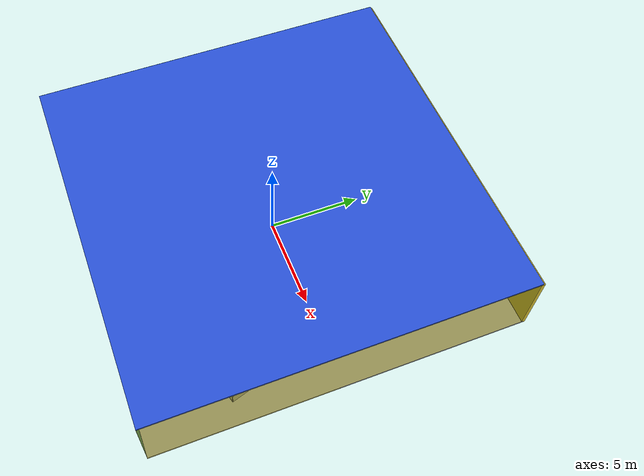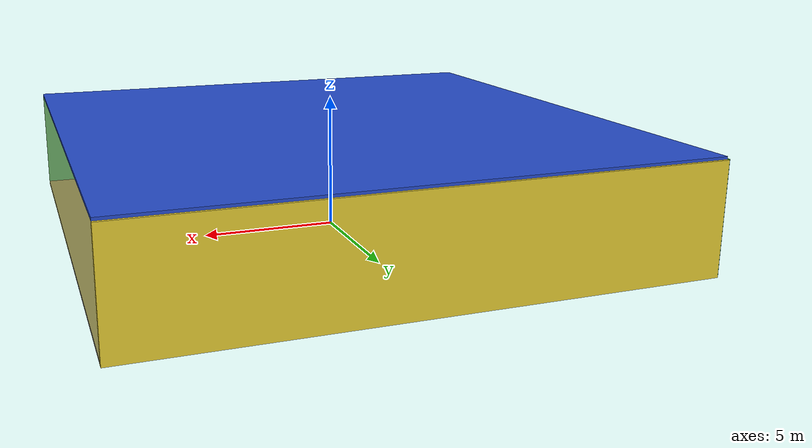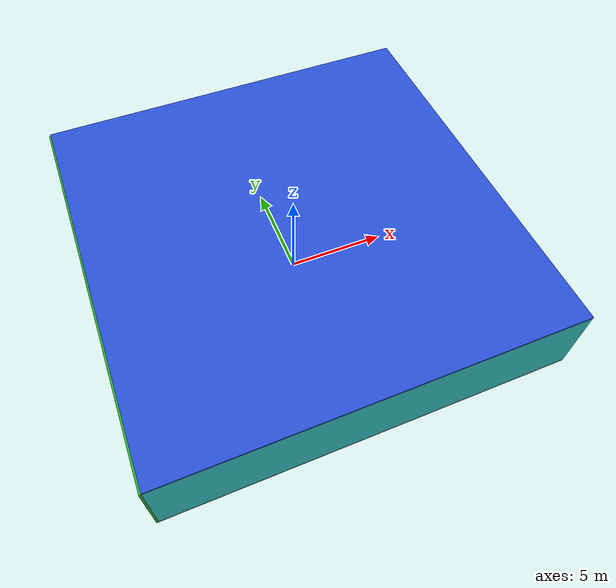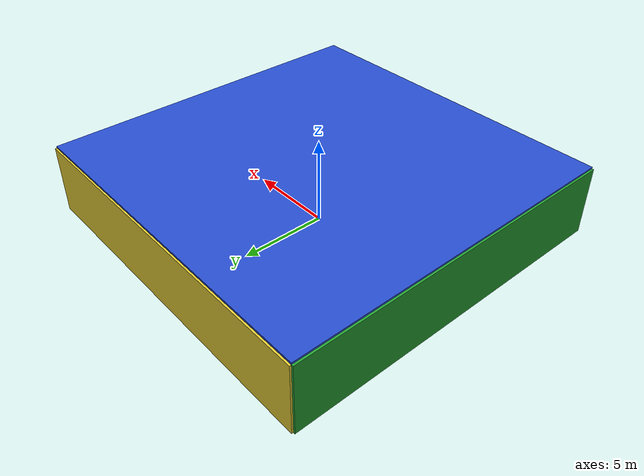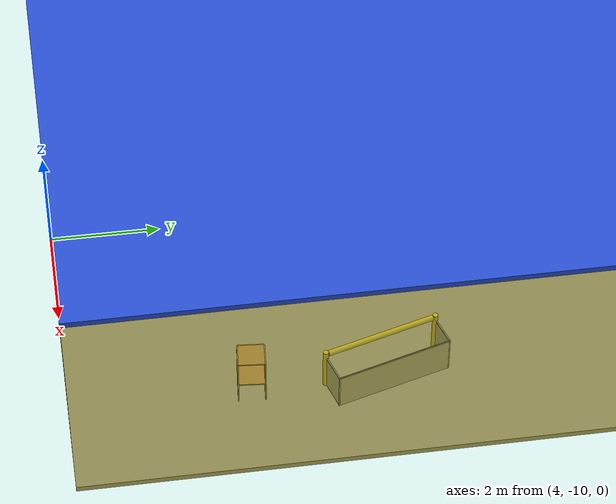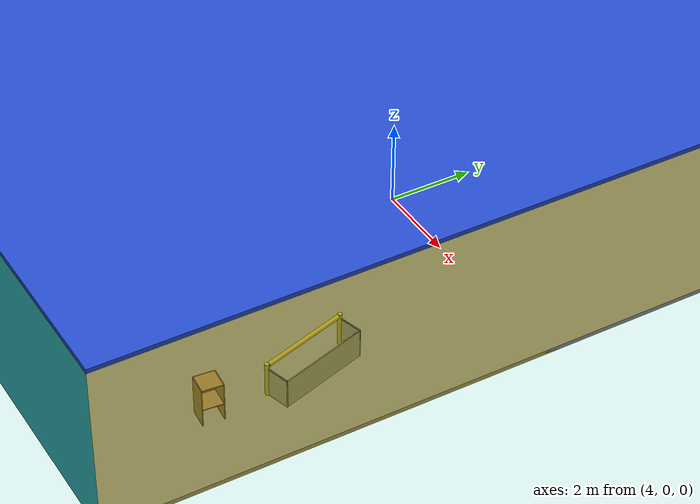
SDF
<sdf version="1.4">
 <world name="default">
  <physics type="ode">
   <max_step_size>0.001</max_step_size>
   <real_time_factor>1</real_time_factor>
   <real_time_update_rate>1000</real_time_update_rate>
   <gravity>0 0 -9.8</gravity>
  </physics>
  <scene><ambient>0.4 0.4 0.4 1</ambient><background>0.7 0.7 0.7 1</background><shadows>1</shadows></scene>
  <model name="Surrounding">
   <static>1</static>
   <link name="Ceiling">
    <collision name="Ceiling_Collision"><geometry><box><size>20 20 0.1</size></box></geometry></collision>
    <visual name="Ceiling_Visual">
     <geometry><box><size>20 20 0.1</size></box></geometry>
     <material>
      <script><uri>file://media/materials/scripts/gazebo.material</uri><name>Gazebo/BlueLaser</name></script>
     </material>
    </visual>
    <pose>0 0 4.05 0 0 0</pose>
   </link>
   <link name="Wall_South">
    <collision name="Wall_South_Collision">
     <geometry><box><size>20 0 4</size></box></geometry>
     <pose>0 0 2 0 -0 0</pose>
    </collision>
    <visual name="Wall_South_Visual">
     <pose>0 0 2 0 -0 0</pose>
     <geometry><box><size>20 0 4</size></box></geometry>
     <material>
      <script><uri>file://media/materials/scripts/gazebo.material</uri><name>Gazebo/TurquoiseGlow</name></script>
     </material>
    </visual>
    <velocity_decay><linear>0</linear><angular>0</angular></velocity_decay>
    <pose>0 -10 0 0 -0 0</pose>
   </link>
   <link name="Wall_East">
    <collision name="Wall_21_Collision">
     <geometry><box><size>20 0 4</size></box></geometry>
     <pose>0 0 2 0 -0 0</pose>
    </collision>
    <visual name="Wall_21_Visual">
     <pose>0 0 2 0 -0 0</pose>
     <geometry><box><size>20 0 4</size></box></geometry>
     <material>
      <script>
       <uri>file://media/materials/scripts/gazebo.material</uri>
       <name>Gazebo/YellowTransparent</name>
      </script>
     </material>
    </visual>
    <velocity_decay><linear>0</linear><angular>0</angular></velocity_decay>
    <pose>10 0 0 0 -0 1.5708</pose>
   </link>
   <link name="Wall_North">
    <collision name="Wall_22_Collision">
     <geometry><box><size>20 0.2 4</size></box></geometry>
     <pose>0 0 2 0 -0 0</pose>
    </collision>
    <visual name="Wall_22_Visual">
     <pose>0 0 2 0 -0 0</pose>
     <geometry><box><size>20 0.2 4</size></box></geometry>
     <material>
      <script><uri>file://media/materials/scripts/gazebo.material</uri><name>Gazebo/ZincYellow</name></script>
     </material>
    </visual>
    <velocity_decay><linear>0</linear><angular>0</angular></velocity_decay>
    <pose>0 10 0 0 -0 0</pose>
   </link>
   <link name="Wall_West">
    <collision name="Wall_23_Collision">
     <geometry><box><size>20 0.2 4</size></box></geometry>
     <pose>0 0 2 0 -0 0</pose>
    </collision>
    <visual name="Wall_23_Visual">
     <pose>0 0 2 0 -0 0</pose>
     <geometry><box><size>20 0.2 4</size></box></geometry>
     <material>
      <script><uri>file://media/materials/scripts/gazebo.material</uri><name>Gazebo/GreenGlow</name></script>
     </material>
    </visual>
    <velocity_decay><linear>0</linear><angular>0</angular></velocity_decay>
    <pose>-10 0 0 0 0 -1.5708</pose>
   </link>
   <link name="Ground_link">
    <collision name="collision">
     <pose>0 0 .05 0 -0 0</pose>
     <geometry><box><size>20 20 0.1</size></box></geometry>
    </collision>
    <visual name="visual">
     <pose>0 0 .05 0 -0 0</pose>
     <geometry><box><size>20 20 0.1</size></box></geometry>
     <material>
      <script><uri>file://media/materials/scripts/gazebo.material</uri><name>Gazebo/Grey</name></script>
     </material>
    </visual>
   </link>
   <static>1</static>
  </model>
  <spherical_coordinates>
   <surface_model>EARTH_WGS84</surface_model>
   <latitude_deg>0</latitude_deg>
   <longitude_deg>0</longitude_deg>
   <elevation>0</elevation>
   <heading_deg>0</heading_deg>
  </spherical_coordinates>
  <light name="lightball_0" type="diffuse">
   <diffuse>0.8 0.8 0.8 1</diffuse>
   <specular>0.2 0.2 0.2 1</specular>
   <attenuation>
    <range>100</range>
    <constant>0.7</constant>
    <linear>0.01</linear>
    <quadratic>0.001</quadratic>
   </attenuation>
   <direction>-0.5 0.1 -0.9</direction>
   <pose>-1.21298674189 -2.16523682405 3.80054481055 0 0 0</pose>
  </light>
  <light name="lightball_1" type="diffuse">
   <diffuse>0.8 0.8 0.8 1</diffuse>
   <specular>0.2 0.2 0.2 1</specular>
   <attenuation>
    <range>100</range>
    <constant>0.7</constant>
    <linear>0.01</linear>
    <quadratic>0.001</quadratic>
   </attenuation>
   <direction>-0.5 0.1 -0.9</direction>
   <pose>-1.42242678651 7.10158954056 1.98985553372 0 0 0</pose>
  </light>
  <light name="lightball_2" type="diffuse">
   <diffuse>0.8 0.8 0.8 1</diffuse>
   <specular>0.2 0.2 0.2 1</specular>
   <attenuation>
    <range>100</range>
    <constant>0.7</constant>
    <linear>0.01</linear>
    <quadratic>0.001</quadratic>
   </attenuation>
   <direction>-0.5 0.1 -0.9</direction>
   <pose>-5.18215031996 5.08019494179 3.05128467242 0 0 0</pose>
  </light>
  <light name="lightball_3" type="diffuse">
   <diffuse>0.8 0.8 0.8 1</diffuse>
   <specular>0.2 0.2 0.2 1</specular>
   <attenuation>
    <range>100</range>
    <constant>0.7</constant>
    <linear>0.01</linear>
    <quadratic>0.001</quadratic>
   </attenuation>
   <direction>-0.5 0.1 -0.9</direction>
   <pose>1.35488319986 5.45244636958 3.63554910229 0 0 0</pose>
  </light>
  <light name="lightball_4" type="diffuse">
   <diffuse>0.8 0.8 0.8 1</diffuse>
   <specular>0.2 0.2 0.2 1</specular>
   <attenuation>
    <range>100</range>
    <constant>0.7</constant>
    <linear>0.01</linear>
    <quadratic>0.001</quadratic>
   </attenuation>
   <direction>-0.5 0.1 -0.9</direction>
   <pose>-6.80418070118 2.5088625985 2.22713667659 0 0 0</pose>
  </light>
  <light name="lightball_5" type="diffuse">
   <diffuse>0.8 0.8 0.8 1</diffuse>
   <specular>0.2 0.2 0.2 1</specular>
   <attenuation>
    <range>100</range>
    <constant>0.7</constant>
    <linear>0.01</linear>
    <quadratic>0.001</quadratic>
   </attenuation>
   <direction>-0.5 0.1 -0.9</direction>
   <pose>8.79023213664 4.64560169093 3.50799854939 0 0 0</pose>
  </light>
  <light name="lightball_6" type="diffuse">
   <diffuse>0.8 0.8 0.8 1</diffuse>
   <specular>0.2 0.2 0.2 1</specular>
   <attenuation>
    <range>100</range>
    <constant>0.7</constant>
    <linear>0.01</linear>
    <quadratic>0.001</quadratic>
   </attenuation>
   <direction>-0.5 0.1 -0.9</direction>
   <pose>-3.16642485103 2.89860843909 3.25828410967 0 0 0</pose>
  </light>
  <light name="lightball_7" type="diffuse">
   <diffuse>0.8 0.8 0.8 1</diffuse>
   <specular>0.2 0.2 0.2 1</specular>
   <attenuation>
    <range>100</range>
    <constant>0.7</constant>
    <linear>0.01</linear>
    <quadratic>0.001</quadratic>
   </attenuation>
   <direction>-0.5 0.1 -0.9</direction>
   <pose>9.32221089879 8.19719018108 3.4080772113 0 0 0</pose>
  </light>
  <include><uri>model://table</uri><pose>-6.84062044947 4.69078451075 0 0 0 0.21401559563</pose></include>
  <include>
   <uri>model://textured_shapes</uri>
   <pose>-4.21305181382 -4.16131027384 0 0 0 2.11561379864</pose>
  </include>
  <include>
   <uri>model://construction_cone</uri>
   <pose>1.65275382958 7.07311288734 0 0 0 2.14569306676</pose>
  </include>
  <include><uri>model://cabinet</uri><pose>8.28595481024 -6.82006286966 0 0 0 3.05544138513</pose></include>
  <include>
   <uri>model://robocup_3Dsim_goal</uri>
   <pose>8.003065114 -4.52599113909 0 0 0 0.287833133211</pose>
  </include>
 </world>
</sdf>

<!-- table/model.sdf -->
<sdf version="1.5">
  <model name="table">
    <static>true</static>
    <link name="link">
      <collision name="surface">
        <pose>0 0 1.0 0 0 0</pose>
        <geometry>
          <box>
            <size>1.5 0.8 0.03</size>
          </box>
        </geometry>
        <surface>
          <friction>
            <ode>
              <mu>0.6</mu>
              <mu2>0.6</mu2>
            </ode>
          </friction>
        </surface>
      </collision>
      <visual name="visual1">
        <pose>0 0 1.0 0 0 0</pose>
        <geometry>
          <box>
            <size>1.5 0.8 0.03</size>
          </box>
        </geometry>
        <material>
          <script>
            <uri>model://media/materials/scripts/gazebo.material</uri>
            <name>Gazebo/Wood</name>
          </script>
        </material>
      </visual>
      <collision name="front_left_leg">
        <pose>0.68 0.38 0.5 0 0 0</pose>
        <geometry>
          <cylinder>
            <radius>0.02</radius>
            <length>1.0</length>
          </cylinder>
        </geometry>
      </collision>
      <visual name="front_left_leg">
        <pose>0.68 0.38 0.5 0 0 0</pose>
        <geometry>
          <cylinder>
            <radius>0.02</radius>
            <length>1.0</length>
          </cylinder>
        </geometry>
        <material>
          <script>
            <uri>model://media/materials/scripts/gazebo.material</uri>
            <name>Gazebo/Grey</name>
          </script>
        </material>
      </visual>
      <collision name="front_right_leg">
        <pose>0.68 -0.38 0.5 0 0 0</pose>
        <geometry>
          <cylinder>
            <radius>0.02</radius>
            <length>1.0</length>
          </cylinder>
        </geometry>
      </collision>
      <visual name="front_right_leg">
        <pose>0.68 -0.38 0.5 0 0 0</pose>
        <geometry>
          <cylinder>
            <radius>0.02</radius>
            <length>1.0</length>
          </cylinder>
        </geometry>
        <material>
          <script>
            <uri>model://media/materials/scripts/gazebo.material</uri>
            <name>Gazebo/Grey</name>
          </script>
        </material>
      </visual>
      <collision name="back_right_leg">
        <pose>-0.68 -0.38 0.5 0 0 0</pose>
        <geometry>
          <cylinder>
            <radius>0.02</radius>
            <length>1.0</length>
          </cylinder>
        </geometry>
      </collision>
      <visual name="back_right_leg">
        <pose>-0.68 -0.38 0.5 0 0 0</pose>
        <geometry>
          <cylinder>
            <radius>0.02</radius>
            <length>1.0</length>
          </cylinder>
        </geometry>
        <material>
          <script>
            <uri>model://media/materials/scripts/gazebo.material</uri>
            <name>Gazebo/Grey</name>
          </script>
        </material>
      </visual>
      <collision name="back_left_leg">
        <pose>-0.68 0.38 0.5 0 0 0</pose>
        <geometry>
          <cylinder>
            <radius>0.02</radius>
            <length>1.0</length>
          </cylinder>
        </geometry>
      </collision>
      <visual name="back_left_leg">
        <pose>-0.68 0.38 0.5 0 0 0</pose>
        <geometry>
          <cylinder>
            <radius>0.02</radius>
            <length>1.0</length>
          </cylinder>
        </geometry>
        <material>
          <script>
            <uri>model://media/materials/scripts/gazebo.material</uri>
            <name>Gazebo/Grey</name>
          </script>
        </material>
      </visual>
    </link>
  </model>
</sdf>

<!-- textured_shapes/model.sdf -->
<sdf version="1.6">
  <model name="textured_shapes">
    <pose>0 0 0.5 0 0 0</pose>
    <link name="box">
      <pose>0 -1.5 0 0 0 0</pose>
      <collision name="collision">
        <geometry>
          <box>
            <size>1 1 1</size>
          </box>
        </geometry>
      </collision>
      <visual name="visual">
        <geometry>
          <box>
            <size>1 1 1</size>
          </box>
        </geometry>
        <material>
          <script>
            <uri>model://../model_source/models/textured_shapes/materials/scripts</uri>
            <uri>model://../model_source/models/textured_shapes/materials/textures</uri>
            <name>TexturedShape/Squares</name>
          </script>
        </material>
      </visual>
    </link>
    <link name="sphere">
      <collision name="collision">
        <geometry>
          <sphere>
            <radius>0.5</radius>
          </sphere>
        </geometry>
      </collision>
      <visual name="visual">
        <geometry>
          <sphere>
            <radius>0.5</radius>
          </sphere>
        </geometry>
        <material>
          <script>
            <uri>model://../model_source/models/textured_shapes/materials/scripts</uri>
            <uri>model://../model_source/models/textured_shapes/materials/textures</uri>
            <name>TexturedShape/Squares</name>
          </script>
        </material>
      </visual>
    </link>
    <link name="cylinder">
      <pose>0 1.5 0 0 0 0</pose>
      <collision name="collision">
        <geometry>
          <cylinder>
            <radius>0.5</radius>
            <length>1</length>
          </cylinder>
        </geometry>
      </collision>
      <visual name="visual">
        <geometry>
          <cylinder>
            <radius>0.5</radius>
            <length>1</length>
          </cylinder>
        </geometry>
        <material>
          <script>
            <uri>model://../model_source/models/textured_shapes/materials/scripts</uri>
            <uri>model://../model_source/models/textured_shapes/materials/textures</uri>
            <name>TexturedShape/Squares</name>
          </script>
        </material>
      </visual>
    </link>
  </model>
</sdf>

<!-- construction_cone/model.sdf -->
<sdf version="1.5">
  <model name="Construction Cone">
    <link name="link">
      <collision name="collision">
        <geometry>
          <mesh>
            <scale>10 10 10</scale>
            <uri>file://isr-testbed/construction_cone/meshes/construction_cone.dae</uri>
          </mesh>
        </geometry>
      </collision>
      <visual name="visual">
        <geometry>
          <mesh>
            <scale>10 10 10</scale>
            <uri>file://isr-testbed/construction_cone/meshes/construction_cone.dae</uri>
          </mesh>
        </geometry>
      </visual>
    </link>
  </model>
</sdf>

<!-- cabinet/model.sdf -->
<sdf version="1.5">
  <model name="cabinet">
    <static>true</static>
    <link name="cabinet_bottom_plate">
      <inertial>
        <pose>0 0 -1 0 0 0</pose>
        <inertia>
          <ixx>2.050000</ixx>
          <ixy>0</ixy>
          <ixz>0</ixz>
          <iyy>2.050000</iyy>
          <iyz>0</iyz>
          <izz>2.050000</izz>
        </inertia>
        <mass>25.000000</mass>
      </inertial>
      <collision name="cabinet_bottom_plate_geom">
        <pose>0 0 0.010000 0 0 0</pose>
        <geometry>
          <box>
            <size>0.450000 0.450000 0.020000</size>
          </box>
        </geometry>
      </collision>
      <visual name="cabinet_bottom_plate_geom_visual">
        <pose>0 0 0.010000 0 0 0</pose>
        <geometry>
          <box>
            <size>0.450000 0.450000 0.020000</size>
          </box>
        </geometry>
        <material>
          <script>
            <uri>model://media/materials/scripts/gazebo.material</uri>
            <name>Gazebo/Wood</name>
          </script>
        </material>
      </visual>
      <collision name="cabinet_bottom_plate_geom_cabinet_back_plate">
        <pose>0.235000 0 0.510000 0 0 0</pose>
        <geometry>
          <box>
            <size>0.020000 0.450000 1.020000</size>
          </box>
        </geometry>
      </collision>
      <visual name="cabinet_bottom_plate_geom_cabinet_back_plate_visual">
        <pose>0.235000 0 0.510000 0 0 0</pose>
        <geometry>
          <box>
            <size>0.020000 0.450000 1.020000</size>
          </box>
        </geometry>
        <material>
          <script>
            <uri>model://media/materials/scripts/gazebo.material</uri>
            <name>Gazebo/Wood</name>
          </script>
        </material>
      </visual>
      <collision name="cabinet_bottom_plate_geom_cabinet_left_plate">
        <pose>0 0.235000 0.510000 0 0 0</pose>
        <geometry>
          <box>
            <size>0.450000 0.020000 1.020000</size>
          </box>
        </geometry>
      </collision>
      <visual name="cabinet_bottom_plate_geom_cabinet_left_plate_visual">
        <pose>0 0.235000 0.510000 0 0 0</pose>
        <geometry>
          <box>
            <size>0.450000 0.020000 1.020000</size>
          </box>
        </geometry>
        <material>
          <script>
            <uri>model://media/materials/scripts/gazebo.material</uri>
            <name>Gazebo/Wood</name>
          </script>
        </material>
      </visual>
      <collision name="cabinet_bottom_plate_geom_cabinet_middle_plate">
        <pose>0 0 0.510000 0 0 0</pose>
        <geometry>
          <box>
            <size>0.450000 0.450000 0.020000</size>
          </box>
        </geometry>
      </collision>
      <visual name="cabinet_bottom_plate_geom_cabinet_middle_plate_visual">
        <pose>0 0 0.510000 0 0 0</pose>
        <geometry>
          <box>
            <size>0.450000 0.450000 0.020000</size>
          </box>
        </geometry>
        <material>
          <script>
            <uri>model://media/materials/scripts/gazebo.material</uri>
            <name>Gazebo/Wood</name>
          </script>
        </material>
      </visual>
      <collision name="cabinet_bottom_plate_geom_cabinet_right_plate">
        <pose>0 -0.235000 0.510000 0 0 0</pose>
        <geometry>
          <box>
            <size>0.450000 0.020000 1.020000</size>
          </box>
        </geometry>
      </collision>
      <visual name="cabinet_bottom_plate_geom_cabinet_right_plate_visual">
        <pose>0 -0.235000 0.510000 0 0 0</pose>
        <geometry>
          <box>
            <size>0.450000 0.020000 1.020000</size>
          </box>
        </geometry>
        <material>
          <script>
            <uri>model://media/materials/scripts/gazebo.material</uri>
            <name>Gazebo/Wood</name>
          </script>
        </material>
      </visual>
      <collision name="cabinet_bottom_plate_geom_cabinet_top_plate">
        <pose>0 0 1.010000 0 0 0</pose>
        <geometry>
          <box>
            <size>0.450000 0.450000 0.020000</size>
          </box>
        </geometry>
      </collision>
      <visual name="cabinet_bottom_plate_geom_cabinet_top_plate_visual">
        <pose>0 0 1.010000 0 0 0</pose>
        <geometry>
          <box>
            <size>0.450000 0.450000 0.020000</size>
          </box>
        </geometry>
        <material>
          <script>
            <uri>model://media/materials/scripts/gazebo.material</uri>
            <name>Gazebo/Wood</name>
          </script>
        </material>
      </visual>
    </link>
  </model>
</sdf>

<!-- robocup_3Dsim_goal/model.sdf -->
<sdf version="1.5">
  <model name="robocup_3d_goal">
    <static>true</static>
    <link name="left_post">
      <pose>0 1.05 0.45 0 0 0</pose>
      <collision name="collision">
        <geometry>
          <cylinder>
            <radius>0.05</radius>
            <length>0.9</length>
          </cylinder>
        </geometry>
      </collision>
      <visual name="visual">
        <geometry>
          <cylinder>
            <radius>0.05</radius>
            <length>0.9</length>
          </cylinder>
        </geometry>
        <material>
          <script>
            <uri>file://media/materials/scripts/gazebo.material</uri>
            <name>Gazebo/ZincYellow</name>
          </script>
        </material>
      </visual>
    </link>
    <link name="left_support_horiz_lower">
      <pose>0.30 1.05 0.01 0 0 0</pose>
      <collision name="collision">
        <geometry>
          <box>
            <size>0.50 0.02 0.02</size>
          </box>
        </geometry>
      </collision>
      <visual name="visual">
        <geometry>
          <box>
            <size>0.50 0.02 0.02</size>
          </box>
        </geometry>
        <material>
          <script>
            <uri>file://media/materials/scripts/gazebo.material</uri>
            <name>Gazebo/White</name>
          </script>
        </material>
      </visual>
    </link>
    <link name="left_support_horiz_upper">
      <pose>0.30 1.05 0.79 0 0 0</pose>
      <collision name="collision">
        <geometry>
          <box>
            <size>0.50 0.02 0.02</size>
          </box>
        </geometry>
      </collision>
      <visual name="visual">
        <geometry>
          <box>
            <size>0.50 0.02 0.02</size>
          </box>
        </geometry>
        <material>
          <script>
            <uri>file://media/materials/scripts/gazebo.material</uri>
            <name>Gazebo/White</name>
          </script>
        </material>
      </visual>
    </link>
    <link name="left_support_vertical">
      <pose>0.56 1.05 0.4 0 1.5708 0</pose>
      <collision name="collision">
        <geometry>
          <box>
            <size>0.80 0.02 0.02</size>
          </box>
        </geometry>
      </collision>
      <visual name="visual">
        <geometry>
          <box>
            <size>0.80 0.02 0.02</size>
          </box>
        </geometry>
        <material>
          <script>
            <uri>file://media/materials/scripts/gazebo.material</uri>
            <name>Gazebo/White</name>
          </script>
        </material>
      </visual>
    </link>
    <link name="right_support_horiz_lower">
      <pose>0.30 -1.05 0.01 0 0 0</pose>
      <collision name="collision">
        <geometry>
          <box>
            <size>0.50 0.02 0.02</size>
          </box>
        </geometry>
      </collision>
      <visual name="visual">
        <geometry>
          <box>
            <size>0.50 0.02 0.02</size>
          </box>
        </geometry>
        <material>
          <script>
            <uri>file://media/materials/scripts/gazebo.material</uri>
            <name>Gazebo/White</name>
          </script>
        </material>
      </visual>
    </link>
    <link name="right_support_horiz_upper">
      <pose>0.30 -1.05 0.79 0 0 0</pose>
      <collision name="collision">
        <geometry>
          <box>
            <size>0.50 0.02 0.02</size>
          </box>
        </geometry>
      </collision>
      <visual name="visual">
        <geometry>
          <box>
            <size>0.50 0.02 0.02</size>
          </box>
        </geometry>
        <material>
          <script>
            <uri>file://media/materials/scripts/gazebo.material</uri>
            <name>Gazebo/White</name>
          </script>
        </material>
      </visual>
    </link>
    <link name="right_support_vertical">
      <pose>0.56 -1.05 0.4 0 1.5708 0</pose>
      <collision name="collision">
        <geometry>
          <box>
            <size>0.80 0.02 0.02</size>
          </box>
        </geometry>
      </collision>
      <visual name="visual">
        <geometry>
          <box>
            <size>0.80 0.02 0.02</size>
          </box>
        </geometry>
        <material>
          <script>
            <uri>file://media/materials/scripts/gazebo.material</uri>
            <name>Gazebo/White</name>
          </script>
        </material>
      </visual>
    </link>
    <link name="center_support_horiz_lower">
      <pose>0.56 0 0.01 0 1.5708 0</pose>
      <collision name="collision">
        <geometry>
          <box>
            <size>0.02 2.08 0.02</size>
          </box>
        </geometry>
      </collision>
      <visual name="visual">
        <geometry>
          <box>
            <size>0.02 2.08 0.02</size>
          </box>
        </geometry>
        <material>
          <script>
            <uri>file://media/materials/scripts/gazebo.material</uri>
            <name>Gazebo/White</name>
          </script>
        </material>
      </visual>
    </link>
    <link name="center_support_horiz_upper">
      <pose>0.56 0 0.79 0 1.5708 0</pose>
      <collision name="collision">
        <geometry>
          <box>
            <size>0.02 2.08 0.02</size>
          </box>
        </geometry>
      </collision>
      <visual name="visual">
        <geometry>
          <box>
            <size>0.02 2.08 0.02</size>
          </box>
        </geometry>
        <material>
          <script>
            <uri>file://media/materials/scripts/gazebo.material</uri>
            <name>Gazebo/White</name>
          </script>
        </material>
      </visual>
    </link>
    <link name="right_post">
      <pose>0 -1.05 0.45 0 0 0</pose>
      <collision name="collision">
        <geometry>
          <cylinder>
            <radius>0.05</radius>
            <length>0.9</length>
          </cylinder>
        </geometry>
      </collision>
      <visual name="visual">
        <geometry>
          <cylinder>
            <radius>0.05</radius>
            <length>0.9</length>
          </cylinder>
        </geometry>
        <material>
          <script>
            <uri>file://media/materials/scripts/gazebo.material</uri>
            <name>Gazebo/ZincYellow</name>
          </script>
        </material>
      </visual>
    </link>
    <link name="crossbar">
      <pose>0 0 0.85 1.57 1.57 0</pose>
      <collision name="collision">
        <geometry>
          <cylinder>
            <radius>0.05</radius>
            <length>2.0</length>
          </cylinder>
        </geometry>
      </collision>
      <visual name="visual">
        <geometry>
          <cylinder>
            <radius>0.05</radius>
            <length>2.0</length>
          </cylinder>
        </geometry>
        <material>
          <script>
            <uri>file://media/materials/scripts/gazebo.material</uri>
            <name>Gazebo/ZincYellow</name>
          </script>
        </material>
      </visual>
    </link>
    <link name="center_net">
      <pose>0.56 0 0.40 0 0 0</pose>
      <collision name="collision">
        <geometry>
          <box>
            <size>0.01 2.1 0.80</size>
          </box>
        </geometry>
      </collision>
      <visual name="visual">
        <geometry>
          <box>
            <size>0.01 2.1 0.80</size>
          </box>
        </geometry>
        <material>
          <script>
            <uri>model://../model_source/models/robocup09_spl_field/materials/scripts/</uri>
            <uri>model://../model_source/models/robocup09_spl_field/materials/textures/</uri>
            <name>RoboCup/Net</name>
          </script>
        </material>
      </visual>
    </link>
    <link name="left_net">
      <pose>0.30 1.05 0.40 0 0 0</pose>
      <collision name="collision">
        <geometry>
          <box>
            <size>0.50 0.01 0.76</size>
          </box>
        </geometry>
      </collision>
      <visual name="visual">
        <geometry>
          <box>
            <size>0.50 0.01 0.76</size>
          </box>
        </geometry>
        <material>
          <script>
            <uri>model://../model_source/models/robocup09_spl_field/materials/scripts/</uri>
            <uri>model://../model_source/models/robocup09_spl_field/materials/textures/</uri>
            <name>RoboCup/Net</name>
          </script>
        </material>
      </visual>
    </link>
    <link name="right_net">
      <pose>0.30 -1.05 0.40 0 0 0</pose>
      <collision name="collision">
        <geometry>
          <box>
            <size>0.50 0.01 0.76</size>
          </box>
        </geometry>
      </collision>
      <visual name="visual">
        <geometry>
          <box>
            <size>0.50 0.01 0.76</size>
          </box>
        </geometry>
        <material>
          <script>
            <uri>model://../model_source/models/robocup09_spl_field/materials/scripts/</uri>
            <uri>model://../model_source/models/robocup09_spl_field/materials/textures/</uri>
            <name>RoboCup/Net</name>
          </script>
        </material>
      </visual>
    </link>
  </model>
</sdf>
